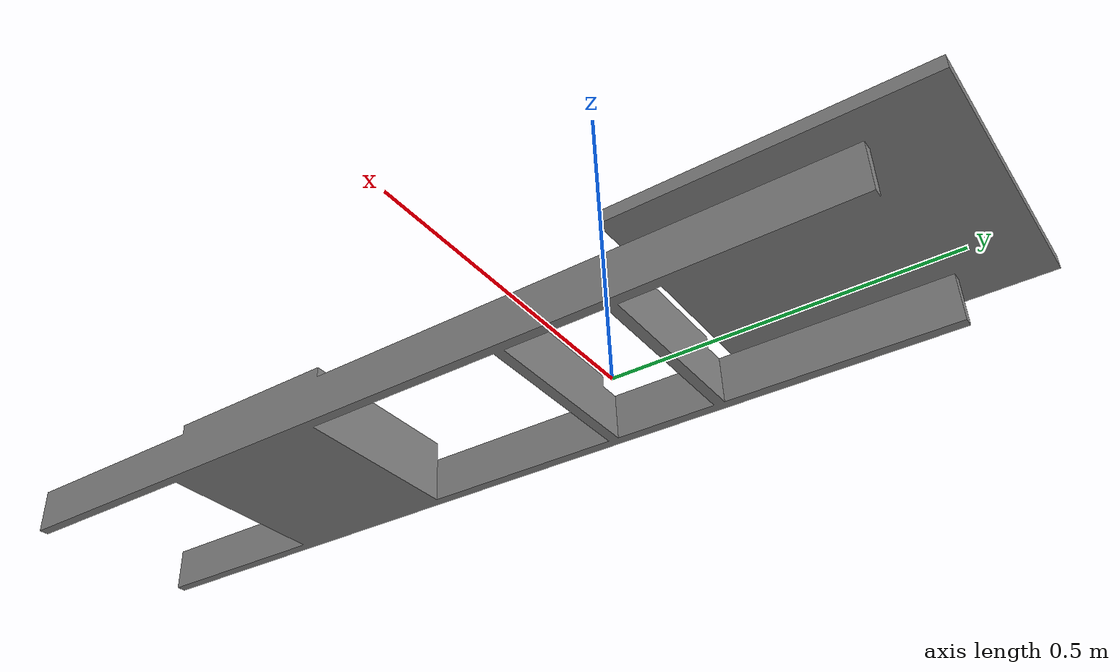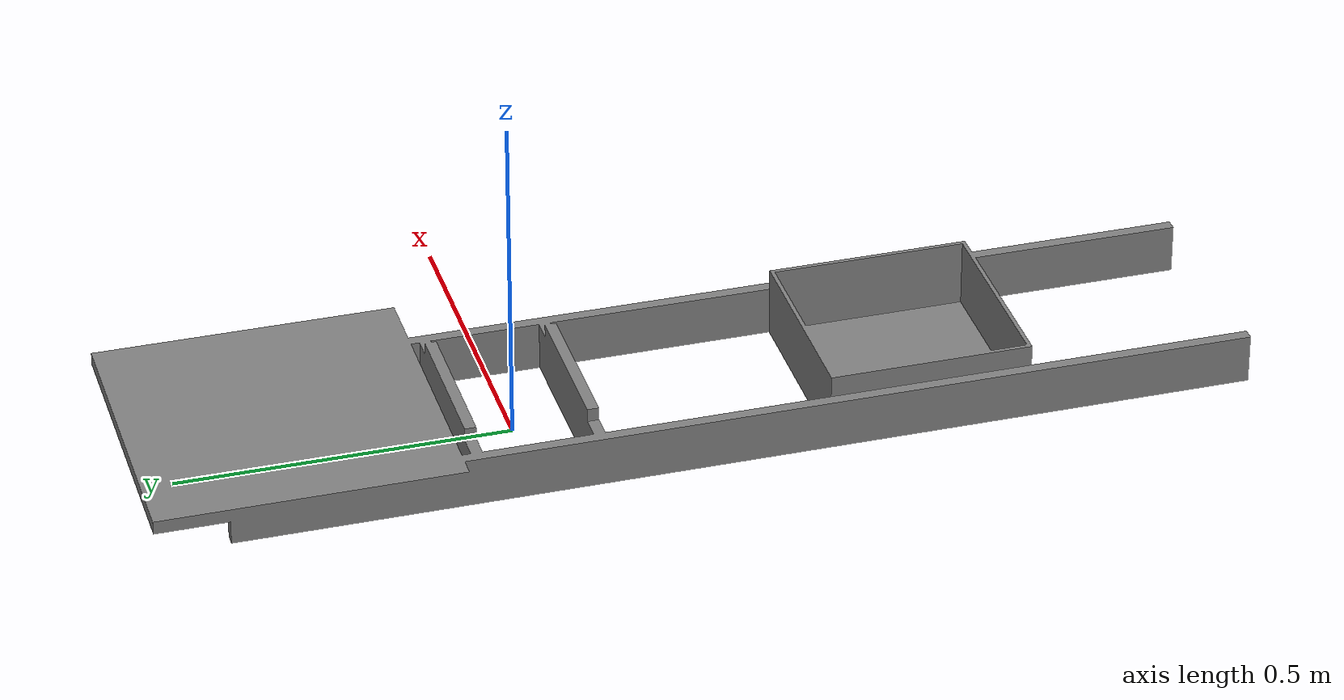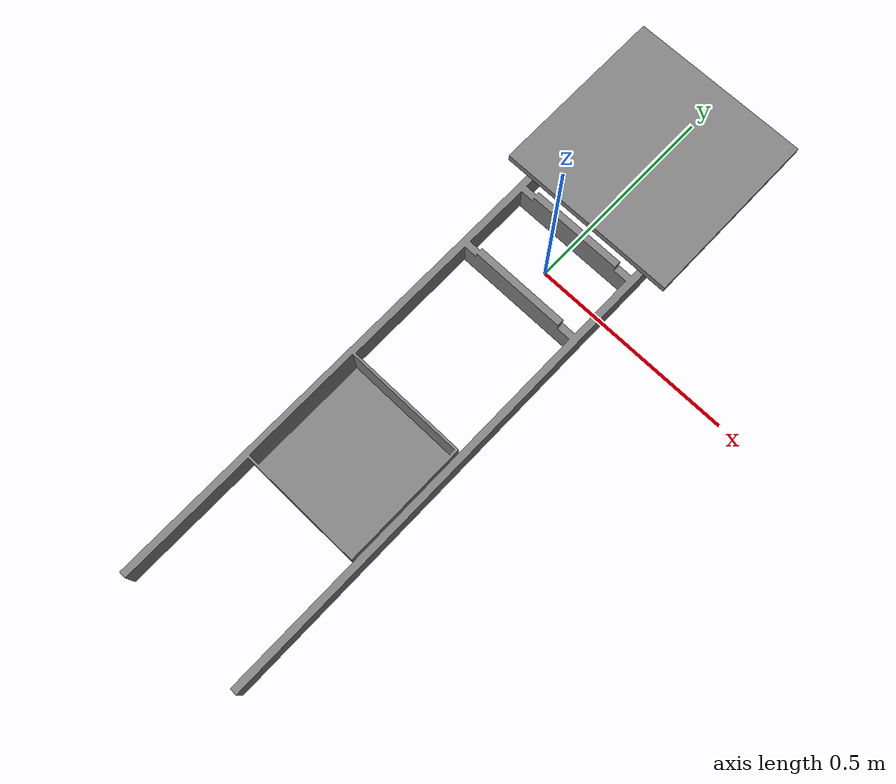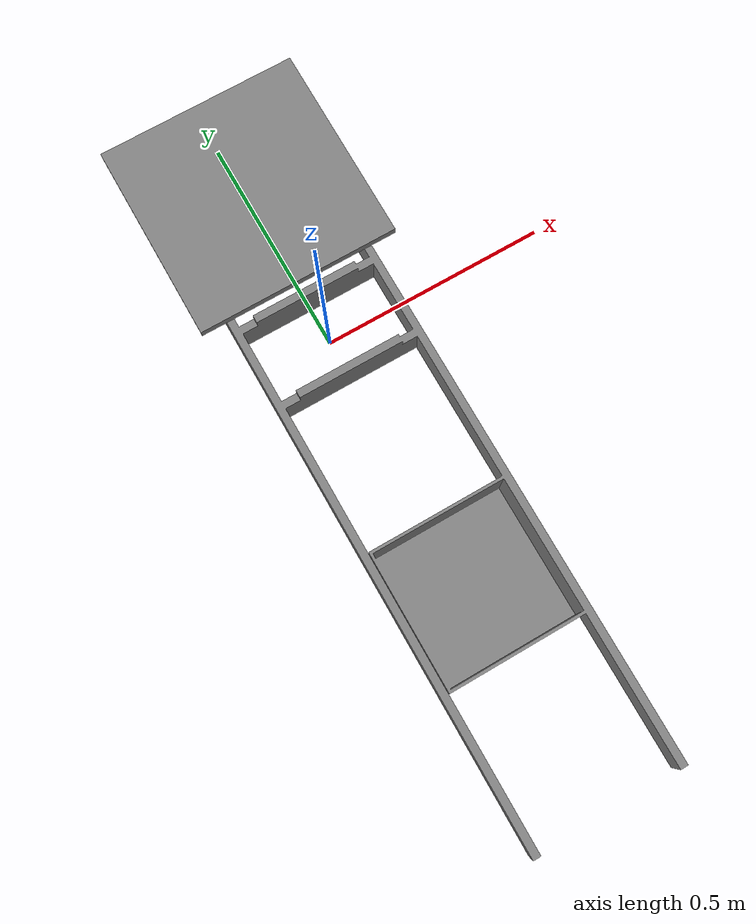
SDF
<?xml version='1.0'?>
<sdf version='1.4'>
<model name="environment">
  <pose>-0.225 -1.070 0 0 0 0</pose>
  <static>1</static>

  <link name="support_frame">
   <collision name="collision">
    <pose>0 0 0 0 0 0</pose>
    <geometry>
     <mesh>
      <uri>model://support_frame/mesh/workspace.stl</uri>
      <scale>0.001 0.001 0.001</scale>
     </mesh>
    </geometry>
    <surface>
     <friction>
       <ode>
         <mu>2</mu>
         <mu2>2</mu2>
       </ode>
       <torsional>
         <ode/>
       </torsional>
     </friction>
     <contact>
       <ode/>
     </contact>
     <bounce/>
    </surface>
    <max_contacts>10</max_contacts>
   </collision>
   <inertial>
    <mass>1000</mass>
   </inertial>
   <visual name="visual">
    <geometry>
     <mesh>
      <uri>model://support_frame/mesh/workspace.stl</uri>
      <scale>0.001 0.001 0.001</scale>
     </mesh>
    </geometry>
    <material>
      <ambient>0.5 0.5 0.5 1</ambient>
      <diffuse>0.5 0.5 0.5 1</diffuse>
      <specular>0.1 0.1 0.1 1</specular>
      <emissive>0 0 0 1</emissive>
    </material>
   </visual>
   <self_collide>0</self_collide>
   <enable_wind>0</enable_wind>
   <kinematic>0</kinematic>
  </link>

  <pose frame=''>0 0 0 0 0 0</pose>
 </model>
</sdf>
